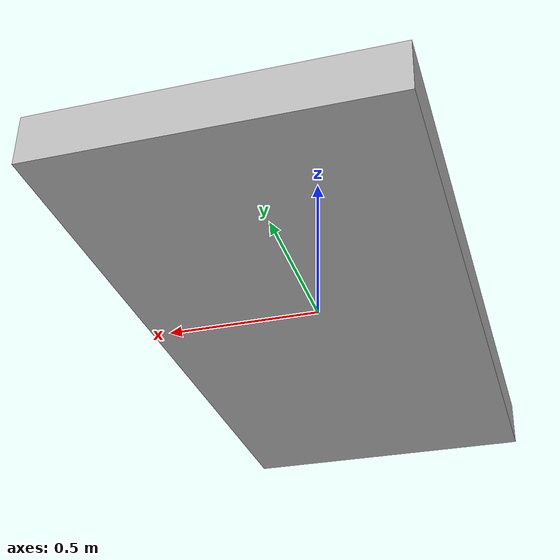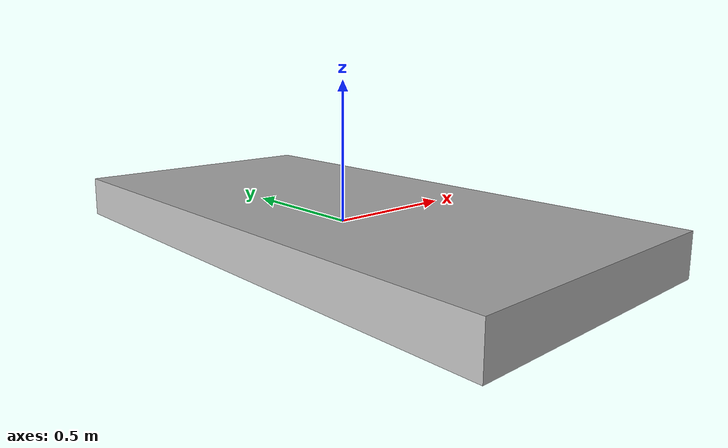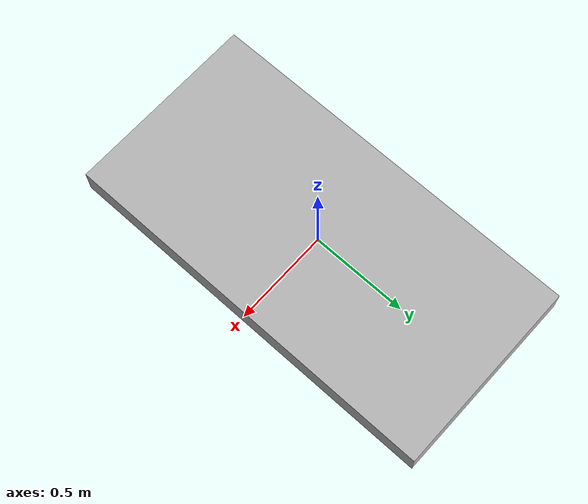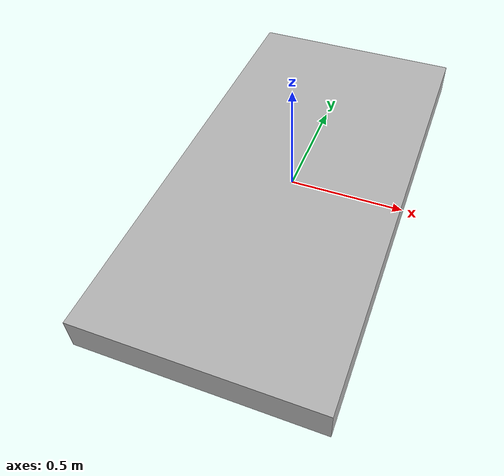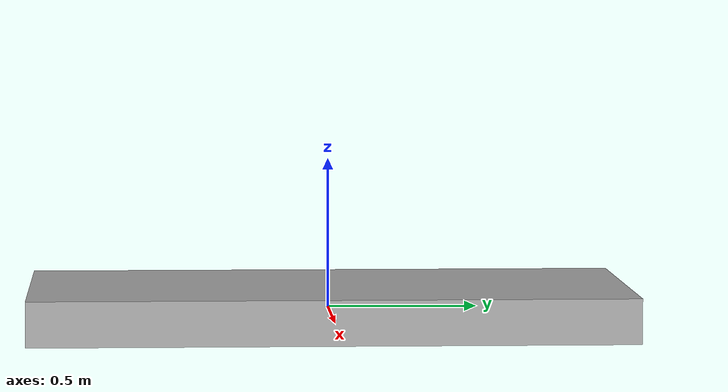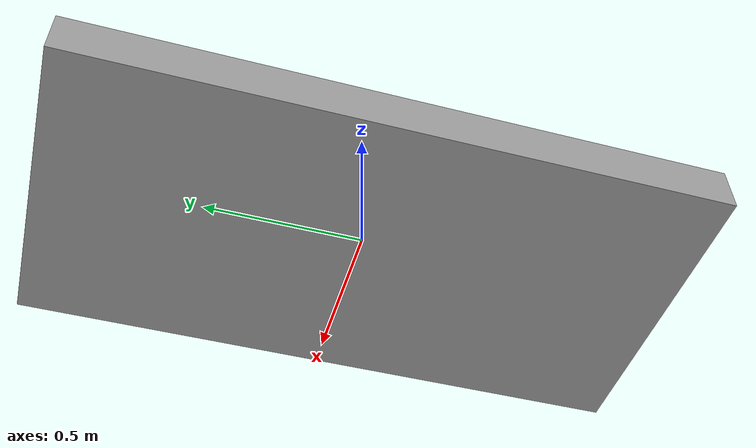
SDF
<?xml version='1.0'?>
<sdf version='1.5'>
  <model name='floating_buoy10'>
    <pose>0 0 0 0 0 0</pose>

    <link name='base_link'>
      <inertial>
        <pose>0 0 0 0 0 0</pose>
        <mass>10</mass>
        <inertia>
          <ixx>1</ixx>
          <ixy>0</ixy>
          <ixz>0</ixz>
          <iyy>1</iyy>
          <iyz>0</iyz>
          <izz>1</izz>
        </inertia>
      </inertial>

      <visual name='base_link_visual'>
        <pose>0 0 0 0 0 0</pose>
        <geometry>
          <box>
            <size>1 2 0.15</size>
          </box>
        </geometry>
      </visual>

      <collision name='base_link_collision'>
        <pose>0 0 0 0 0 0</pose>
        <geometry>
          <box>
            <size>1 2 0.15</size>
          </box>
        </geometry>
      </collision>

    </link>

    <!-- buoyancy plugin -->
    <plugin name="freebuoyancy_gazebo" filename="libfreebuoyancy_gazebo.so">
      <descriptionParam>robot_description</descriptionParam>
      <fluidTopic>current</fluidTopic>
      <alwaysOn>true</alwaysOn>
      <surface>0 0 0</surface>
      <updateRate>.001</updateRate>

      <link name='base_link'>
        <buoyancy>
          <compensation>1.01</compensation>
          <origin xyz= "0 0 0"/>
        </buoyancy>
      </link>

    </plugin>

  </model>

</sdf>
